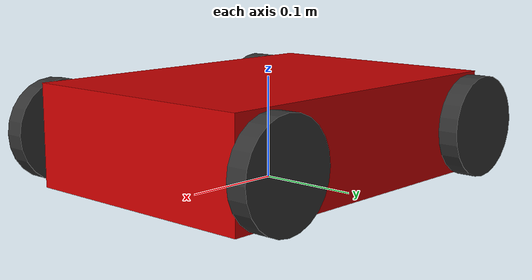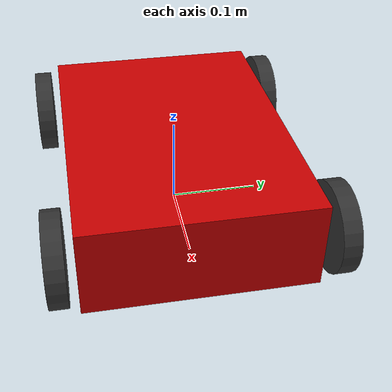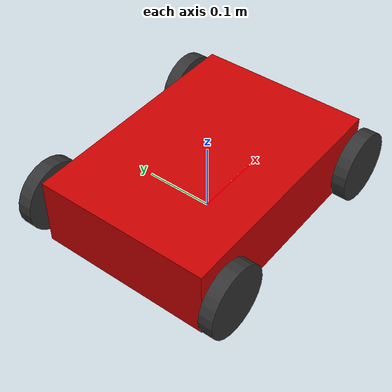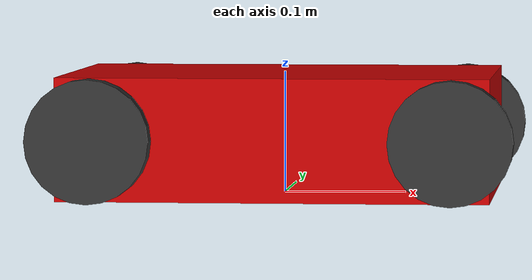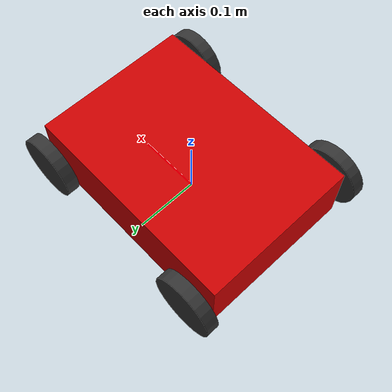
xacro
<?xml version="1.0"?>
<robot xmlns:xacro="http://www.ros.org/wiki/xacro" name="four_wheel_bot">

  <!-- Parameters -->
  <xacro:property name="base_length" value="0.35"/>
  <xacro:property name="base_width"  value="0.25"/>
  <xacro:property name="base_height" value="0.10"/>

  <xacro:property name="wheel_radius" value="0.05"/>
  <xacro:property name="wheel_width"  value="0.02"/>

  <!-- Simple inertial macro -->
  <xacro:macro name="inertial_box" params="mass x y z">
    <inertial>
      <origin xyz="0 0 0" rpy="0 0 0"/>
      <mass value="${mass}"/>
      <!-- crude inertia -->
      <inertia ixx="${(1/12)*mass*(y*y+z*z)}"
               iyy="${(1/12)*mass*(x*x+z*z)}"
               izz="${(1/12)*mass*(x*x+y*y)}"
               ixy="0" ixz="0" iyz="0"/>
    </inertial>
  </xacro:macro>

  <xacro:macro name="inertial_cylinder" params="mass r h">
    <inertial>
      <origin xyz="0 0 0" rpy="0 0 0"/>
      <mass value="${mass}"/>
      <inertia ixx="${(1/12)*mass*(3*r*r + h*h)}"
               iyy="${(1/12)*mass*(3*r*r + h*h)}"
               izz="${(1/2)*mass*r*r}"
               ixy="0" ixz="0" iyz="0"/>
    </inertial>
  </xacro:macro>

  <!-- Materials -->
  <material name="red">
    <color rgba="0.8 0.0 0.0 1.0"/>
  </material>

  <material name="black">
    <color rgba="0.2 0.2 0.2 1.0"/>
  </material>

  <!-- Base link -->
  <link name="base_link">
    <visual>
      <origin xyz="0 0 ${base_height/2}" rpy="0 0 0"/>
      <geometry>
        <box size="${base_length} ${base_width} ${base_height}"/>
      </geometry>
      <material name="red"/>
    </visual>
    <collision>
      <origin xyz="0 0 ${base_height/2}" rpy="0 0 0"/>
      <geometry>
        <box size="${base_length} ${base_width} ${base_height}"/>
      </geometry>
    </collision>
    <xacro:inertial_box mass="5.0" x="${base_length}" y="${base_width}" z="${base_height}"/>
  </link>

  <!-- Wheel macro -->
  <xacro:macro name="wheel" params="name x y">
    <link name="${name}_link">
      <visual>
        <origin xyz="0 0 0" rpy="${pi/2} 0 0"/>
        <geometry>
          <cylinder radius="${wheel_radius}" length="${wheel_width}"/>
        </geometry>
        <material name="black"/>
      </visual>
      <collision>
        <origin xyz="0 0 0" rpy="${pi/2} 0 0"/>
        <geometry>
          <cylinder radius="${wheel_radius}" length="${wheel_width}"/>
        </geometry>
      </collision>
      <xacro:inertial_cylinder mass="0.3" r="${wheel_radius}" h="${wheel_width}"/>
    </link>

    <joint name="${name}_joint" type="continuous">
      <parent link="base_link"/>
      <child link="${name}_link"/>
      <origin xyz="${x} ${y} ${wheel_radius}" rpy="0 0 0"/>
      <axis xyz="0 1 0"/>
    </joint>
  </xacro:macro>

  <!-- Positions -->
  <xacro:property name="x_off" value="${base_length/2 - 0.03}"/>
  <xacro:property name="y_off" value="${(base_width/2) + (wheel_width/2) + 0.01}"/>

  <!-- 4 wheels -->
  <xacro:wheel name="front_left"  x="${ x_off}" y="${ y_off}"/>
  <xacro:wheel name="front_right" x="${ x_off}" y="${-y_off}"/>
  <xacro:wheel name="rear_left"   x="${-x_off}" y="${ y_off}"/>
  <xacro:wheel name="rear_right"  x="${-x_off}" y="${-y_off}"/>

</robot>
